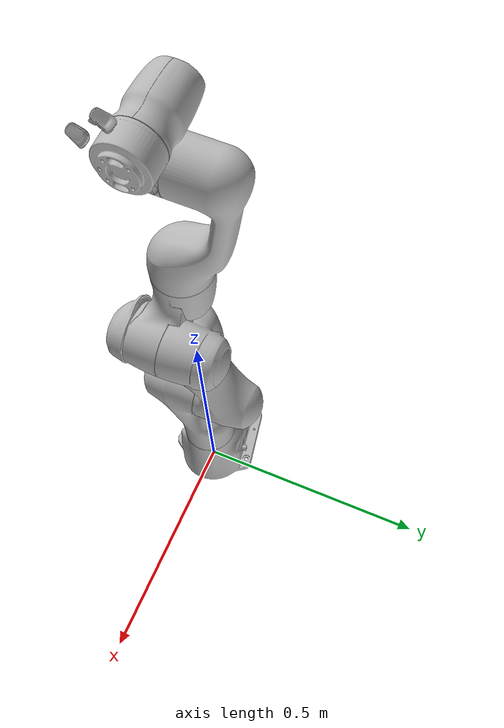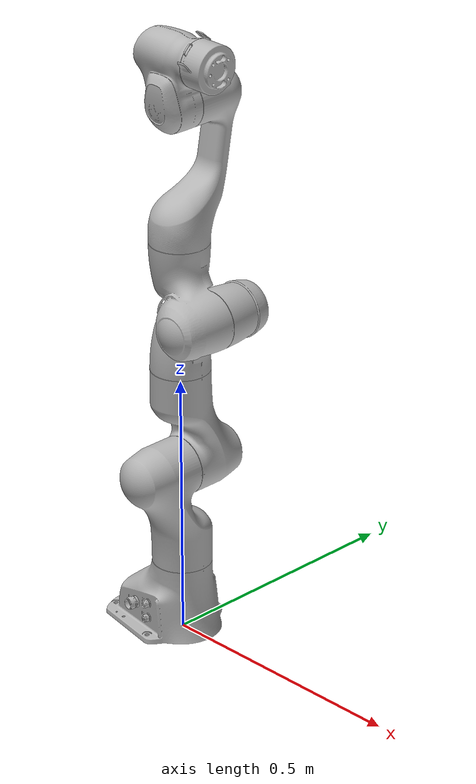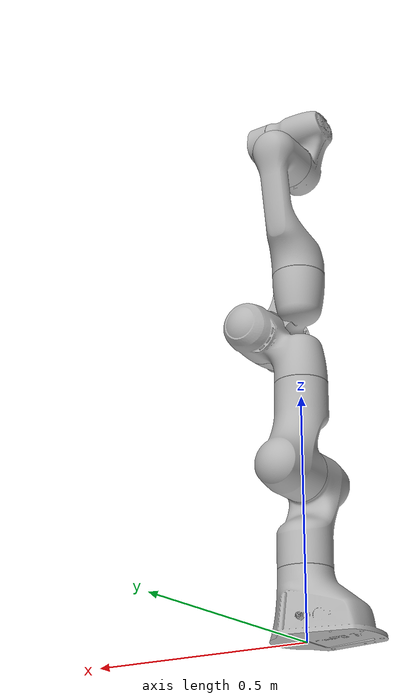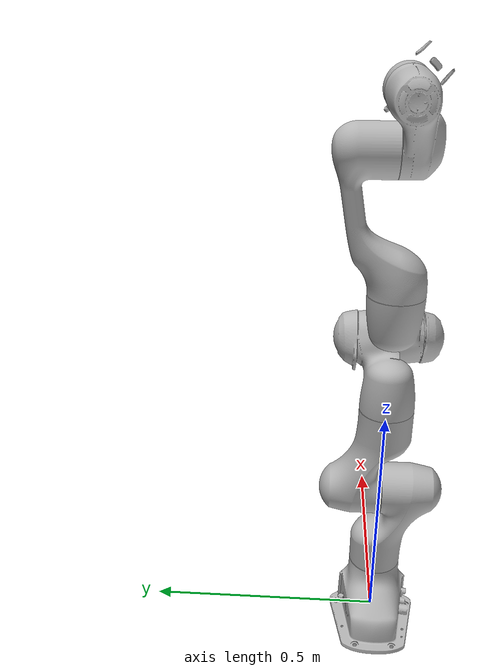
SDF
<?xml version="1.0"?>
<sdf version="1.7">
  <model name="fr3_arm">
    <link name="fr3_link0">
      <inertial>
        <pose>-0.041018 -0.00014 0.049974 0 0 0</pose>
        <mass>0.629769</mass>
        <inertia>
          <ixx>0.00315</ixx>
          <ixy>8.2904e-07</ixy>
          <ixz>0.00015</ixz>
          <iyy>0.00388</iyy>
          <iyz>8.2299e-06</iyz>
          <izz>0.004285</izz>
        </inertia>
      </inertial>
      <visual name="fr3_link0_visual">
        <geometry>
          <mesh>
            <scale>1 1 1</scale>
            <uri>package://frogger/models/fr3/visual/link0.obj</uri>
          </mesh>
        </geometry>
      </visual>
      <collision name="fr3_link0_collision_1">
        <pose>-0.043 0.0 0.05 0.0 0.0 0.0</pose>
        <geometry>
          <box>
            <size>0.23 0.15 0.1</size>
          </box>
        </geometry>
      </collision>
      <collision name="fr3_link0_collision_2">
        <pose>-0.01 0.0 0.12 0.0 0.0 0.0</pose>
        <geometry>
          <box>
            <size>0.14 0.12 0.04</size>
          </box>
        </geometry>
      </collision>
    </link>

    <joint name="fr3_joint1" type="revolute">
      <child>fr3_link1</child>
      <parent>fr3_link0</parent>
      <pose relative_to="fr3_link0">0 0 0.333 0 0 0</pose>
      <axis>
        <xyz>0 0 1</xyz>
        <limit>
          <lower>-2.3093</lower>
          <upper>2.3093 </upper>
          <effort>87.0</effort>
          <velocity>2.0</velocity>
        </limit>
        <dynamics>
          <damping>0.0628</damping>  <!-- # from [1] -->
          <friction>0.2549</friction>
          <spring_reference>0</spring_reference>
          <spring_stiffness>0</spring_stiffness>
        </dynamics>
      </axis>
    </joint>

    <link name="fr3_link1">
      <pose relative_to="fr3_joint1">0 0 0 0 0 0</pose>
      <inertial>
        <pose>0.003875 0.002081 -0.04762 0 0 0</pose>
        <mass>4.970684</mass>
        <inertia>
          <ixx>0.70337</ixx>
          <ixy>-0.00013900</ixy>
          <ixz>0.0067720</ixz>
          <iyy>0.70661</iyy>
          <iyz>0.019169</iyz>
          <izz>0.009117</izz>
        </inertia>
      </inertial>
      <visual name="fr3_link1_visual">
        <geometry>
          <mesh>
            <scale>1 1 1</scale>
            <uri>package://frogger/models/fr3/visual/link1.obj</uri>
          </mesh>
        </geometry>
      </visual>
      <collision name="fr3_link1_collision_1">
        <pose>0.0 -0.05 -0.05 0.52359877559 0.0 0.0</pose>
        <geometry>
          <capsule>
            <length>0.1</length>
            <radius>0.06</radius>
          </capsule>
        </geometry>
      </collision>
      <collision name="fr3_link1_collision_2">
        <pose>0.0 0.0 -0.15 0.0 0.0 0.0</pose>
        <geometry>
          <cylinder>
            <length>0.12</length>
            <radius>0.06</radius>
          </cylinder>
        </geometry>
      </collision>
      <collision name="fr3_link1_collision_3">
        <pose>0.0 0.0 0.0 1.57079632679 0.0 0.0</pose>
        <geometry>
          <capsule>
            <length>0.16</length>
            <radius>0.06</radius>
          </capsule>
        </geometry>
      </collision>
    </link>

    <joint name="fr3_joint2" type="revolute">
      <child>fr3_link2</child>
      <parent>fr3_link1</parent>
      <pose relative_to="fr3_link1">0 0 0 -1.57079632679 0 0</pose>
      <axis>
        <xyz>0 0 1</xyz>
        <limit>
          <lower>-1.5133</lower>
          <upper>1.5133</upper>
          <effort>87.0</effort>
          <velocity>1.0</velocity>
        </limit>
        <dynamics>
          <damping>0.2088</damping>  <!-- # from [1] -->
          <friction>0.1413</friction>
          <spring_reference>0</spring_reference>
          <spring_stiffness>0</spring_stiffness>
        </dynamics>
      </axis>
    </joint>

    <link name="fr3_link2">
      <pose relative_to="fr3_joint2">0 0 0 0 0 0</pose>
      <inertial>
        <pose>-0.003141 -0.02872  0.003495 0 0 0</pose>
        <mass>0.646926</mass>
        <inertia>
          <ixx>0.0079620</ixx>
          <ixy>-3.9250e-3</ixy>
          <ixz>1.0254e-02</ixz>
          <iyy>2.8110e-02</iyy>
          <iyz>7.0400e-04</iyz>
          <izz>2.5995e-02</izz>
        </inertia>
      </inertial>
      <visual name="fr3_link2_visual">
        <geometry>
          <mesh>
            <scale>1 1 1</scale>
            <uri>package://frogger/models/fr3/visual/link2.obj</uri>
          </mesh>
        </geometry>
      </visual>
      <collision name="fr3_link2_collision_1">
        <pose>0.0 -0.195 0.0 1.57079632679 0.0 0.0</pose>
        <geometry>
          <capsule>
            <length>0.11</length>
            <radius>0.06</radius>
          </capsule>
        </geometry>
      </collision>
      <collision name="fr3_link2_collision_2">
        <pose>0.0 -0.05 0.05 -1.0471975512 0.0 0.0</pose>
        <geometry>
          <capsule>
            <length>0.12</length>
            <radius>0.06</radius>
          </capsule>
        </geometry>
      </collision>
    </link>

    <joint name="fr3_joint3" type="revolute">
      <child>fr3_link3</child>
      <parent>fr3_link2</parent>
      <pose relative_to="fr3_link2">0 -0.316 0 1.57079632679 0 0</pose>
      <axis>
        <xyz>0 0 1</xyz>
        <limit>
          <lower>-2.4937</lower>
          <upper>2.4937</upper>
          <effort>87.0</effort>
          <velocity>1.50</velocity>
        </limit>
        <dynamics>
          <damping>0.0361</damping>  <!-- # from [1] -->
          <friction>0.1879</friction>
          <spring_reference>0</spring_reference>
          <spring_stiffness>0</spring_stiffness>
        </dynamics>
      </axis>
    </joint>

    <link name="fr3_link3">
      <pose relative_to="fr3_joint3">0 0 0 0 0 0</pose>
      <inertial>
        <pose>2.7518e-02 3.9252e-02 -6.6502e-02 0 0 0</pose>
        <mass>3.228604</mass>
        <inertia>
          <ixx>3.7242e-02</ixx>
          <ixy>-4.7610e-03</ixy>
          <ixz>-1.1396e-02</ixz>
          <iyy>3.6155e-02</iyy>
          <iyz>-1.2805e-02</iyz>
          <izz>1.0830e-02</izz>
        </inertia>
      </inertial>
      <visual name="fr3_link3_visual">
        <geometry>
          <mesh>
            <scale>1 1 1</scale>
            <uri>package://frogger/models/fr3/visual/link3.obj</uri>
          </mesh>
        </geometry>
      </visual>
      <collision name="fr3_link3_collision_1">
        <pose>0.04 0.035 -0.03 0.0 0.0 0.0</pose>
        <geometry>
          <sphere>
            <radius>0.06</radius>
          </sphere>
        </geometry>
      </collision>
      <collision name="fr3_link3_collision_2">
        <pose>0.085 0.0 0.0 1.57079632679 0.0 0.0</pose>
        <geometry>
          <capsule>
            <length>0.12</length>
            <radius>0.06</radius>
          </capsule>
        </geometry>
      </collision>
    </link>

    <joint name="fr3_joint4" type="revolute">
      <child>fr3_link4</child>
      <parent>fr3_link3</parent>
      <pose relative_to="fr3_link3">0.0825 0 0 1.57079632679 0 0</pose>
      <axis>
        <xyz>0 0 1</xyz>
        <limit>
          <lower>-2.7478</lower>
          <upper>-0.4461</upper>
          <effort>87.0</effort>
          <velocity>1.25</velocity>
        </limit>
        <dynamics>
          <damping>0.2174</damping>  <!-- # from [1] -->
          <friction>0.3625</friction>
          <spring_reference>0</spring_reference>
          <spring_stiffness>0</spring_stiffness>
        </dynamics>
      </axis>
    </joint>

    <link name="fr3_link4">
      <pose relative_to="fr3_joint4">0 0 0 0 0 0</pose>
      <inertial>
        <pose>-5.317e-02 1.04419e-01 2.7454e-02 0 0 0</pose>
        <mass>3.587895</mass>
        <inertia>
          <ixx>2.5853e-02</ixx>
          <ixy>7.7960e-03</ixy>
          <ixz>-1.3320e-03</ixz>
          <iyy>1.9552e-02</iyy>
          <iyz>8.6410e-03</iyz>
          <izz>2.8323e-02</izz>
        </inertia>
      </inertial>
      <visual name="fr3_link4_visual">
        <geometry>
          <mesh>
            <scale>1 1 1</scale>
            <uri>package://frogger/models/fr3/visual/link4.obj</uri>
          </mesh>
        </geometry>
      </visual>
      <collision name="fr3_link4_collision_1">
        <pose>-0.08 0.11 0.0 1.57079632679 0.0 0.0</pose>
        <geometry>
          <capsule>
            <length>0.1</length>
            <radius>0.06</radius>
          </capsule>
        </geometry>
      </collision>
    </link>

    <joint name="fr3_joint5" type="revolute">
      <child>fr3_link5</child>
      <parent>fr3_link4</parent>
      <pose relative_to="fr3_link4">-0.0825 0.384 0 -1.57079632679 0 0</pose>
      <axis>
        <xyz>0 0 1</xyz>
        <limit>
          <lower>-2.4800</lower>
          <upper>2.4800</upper>
          <effort>12.0</effort>
          <velocity>3.0</velocity>
        </limit>
        <dynamics>
          <damping>0.1021</damping>  <!-- # from [1] -->
          <friction>0.2728</friction>
          <spring_reference>0</spring_reference>
          <spring_stiffness>0</spring_stiffness>
        </dynamics>
      </axis>
    </joint>

    <link name="fr3_link5">
      <pose relative_to="fr3_joint5">0 0 0 0 0 0</pose>
      <inertial>
        <pose>-1.1953e-02 4.1065e-02 -3.8437e-02 0 0 0</pose>
        <mass>1.225946</mass>
        <inertia>
          <ixx>3.5549e-02</ixx>
          <ixy>-2.1170e-03</ixy>
          <ixz>-4.0370e-03</ixz>
          <iyy>2.9474e-02</iyy>
          <iyz>2.2900e-04</iyz>
          <izz>8.6270e-03</izz>
        </inertia>
      </inertial>
      <visual name="fr3_link5_visual">
        <geometry>
          <mesh>
            <scale>1 1 1</scale>
            <uri>package://frogger/models/fr3/visual/link5.obj</uri>
          </mesh>
        </geometry>
      </visual>
      <collision name="fr3_link5_collision_2">
        <pose>0.0 0.085 -0.1 -0.174533 0.0 0.0</pose>
        <geometry>
          <box>
            <size>0.07 0.045 0.2</size>
          </box>
        </geometry>
      </collision>
      <collision name="fr3_link5_collision_3">
        <pose>0.0 0.04 0.0 1.57079632679 0.0 0.0</pose>
        <geometry>
          <capsule>
            <length>0.11</length>
            <radius>0.05</radius>
          </capsule>
        </geometry>
      </collision>
    </link>

    <joint name="fr3_joint6" type="revolute">
      <child>fr3_link6</child>
      <parent>fr3_link5</parent>
      <pose relative_to="fr3_link5">0 0 0 1.57079632679 0 0</pose>
      <axis>
        <xyz>0 0 1</xyz>
        <limit>
          <lower>0.8521</lower>
          <upper>4.2094</upper>
          <effort>12.0</effort>
          <velocity>1.50</velocity>
        </limit>
        <dynamics>
          <damping>1.6128e-4</damping>  <!-- # from [1] -->
          <friction>0.1529</friction>
          <spring_reference>0</spring_reference>
          <spring_stiffness>0</spring_stiffness>
        </dynamics>
      </axis>
    </joint>

    <link name="fr3_link6">
      <pose relative_to="fr3_joint6">0 0 0 0 0 1.57079632679</pose>
      <!-- original -->
      <inertial>
        <pose>6.0149e-02 -1.4117e-02 -1.0517e-02 0 0 0</pose>
        <mass>1.666555</mass>
        <inertia>
          <ixx>1.9640e-03</ixx>
          <ixy>1.0900e-04</ixy>
          <ixz>-1.1580e-03</ixz>
          <iyy>4.3540e-03</iyy>
          <iyz>3.4100e-04</iyz>
          <izz>5.4330e-03</izz>
        </inertia>
      </inertial>
      <visual name="fr3_link6_visual">
        <geometry>
          <mesh>
            <scale>1 1 1</scale>
            <uri>package://frogger/models/fr3/visual/link6.obj</uri>
          </mesh>
        </geometry>
      </visual>
      <collision name="fr3_link6_collision_1">
        <pose>0.03 0.01 0.02 0.0 0.0 0.0</pose>
        <geometry>
          <sphere>
            <radius>0.06</radius>
          </sphere>
        </geometry>
      </collision>
      <collision name="fr3_link6_collision_2">
        <pose>0.0845 -0.01 0.0 1.57079632679 0.0 0.0</pose>
        <geometry>
          <capsule>
            <length>0.105</length>
            <radius>0.051</radius>
          </capsule>
        </geometry>
      </collision>
    </link>

    <joint name="fr3_joint7" type="revolute">
      <child>fr3_link7</child>
      <parent>fr3_link6</parent>
      <pose relative_to="fr3_link6">0.088 0 0 1.57079632679 0 0</pose>
      <axis>
        <xyz>0 0 1</xyz>
        <limit>
          <lower>-2.6895</lower>
          <upper>2.6895</upper>
          <effort>12.0</effort>
          <velocity>3.0</velocity>
        </limit>
        <dynamics>
          <damping>0.0632</damping>  <!-- # from [1] -->
          <friction>0.2097</friction>
          <spring_reference>0</spring_reference>
          <spring_stiffness>0</spring_stiffness>
        </dynamics>
      </axis>
    </joint>

    <link name="fr3_link7">
      <pose relative_to="fr3_joint7">0 0 0 0 0 0</pose>
      <inertial>
        <pose>1.0517e-02 -4.252e-03 6.1597e-02 0 0 0</pose>
        <mass>7.35522e-01</mass>
        <inertia>
          <ixx>1.2516e-02</ixx>
          <ixy>-4.2800e-04</ixy>
          <ixz>-1.1960e-03</ixz>
          <iyy>1.0027e-02</iyy>
          <iyz>-7.4100e-04</iyz>
          <izz>4.8150e-03</izz>
        </inertia>
      </inertial>
      <visual name="fr3_link7_visual">
        <geometry>
          <mesh>
            <scale>1 1 1</scale>
            <uri>package://frogger/models/fr3/visual/link7.dae</uri>
          </mesh>
        </geometry>
      </visual>
      <collision name="fr3_link7_collision_1">
        <pose>0.0275 0.027 0.087 0.0 0.0 -0.78539816339</pose>
        <geometry>
          <box>
            <size>0.07 0.1 0.02</size>
          </box>
        </geometry>
      </collision>
      <collision name="fr3_link7_collision_2">
        <pose>0.0 0.0 0.082 0.0 0.0 -0.78539816339</pose>
        <geometry>
          <cylinder>
            <radius>0.045</radius>
            <length>0.05</length>
          </cylinder>
        </geometry>
      </collision>
      <collision name="fr3_link7_collision_3">
        <pose>0.0275 0.027 0.072 0.3 0.0 -0.78539816339</pose>
        <geometry>
          <box>
            <size>0.07 0.1 0.02</size>
          </box>
        </geometry>
      </collision>
    </link>

  </model>
</sdf>
